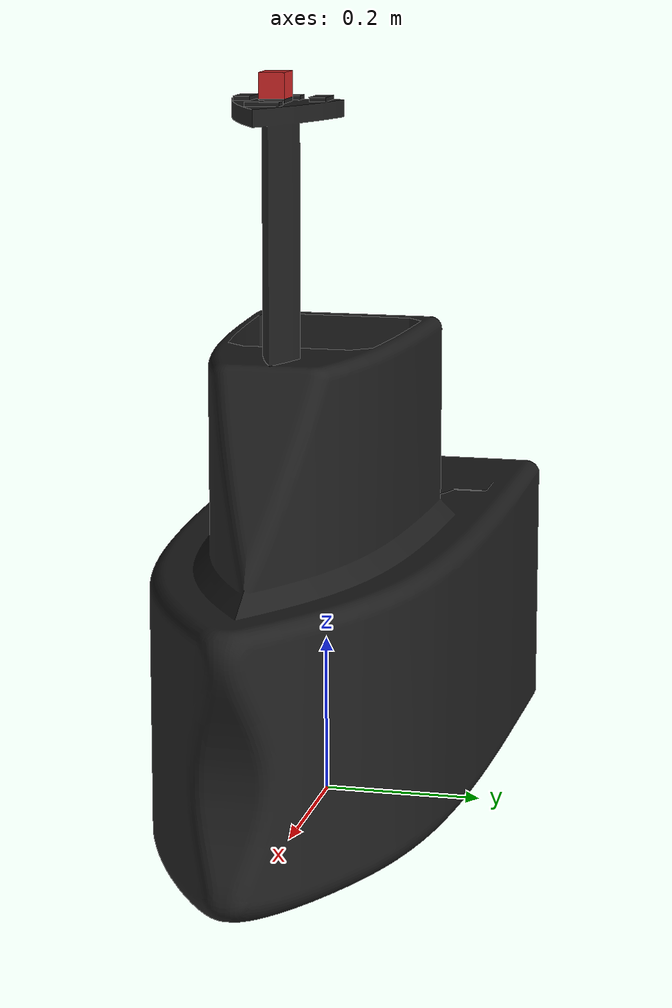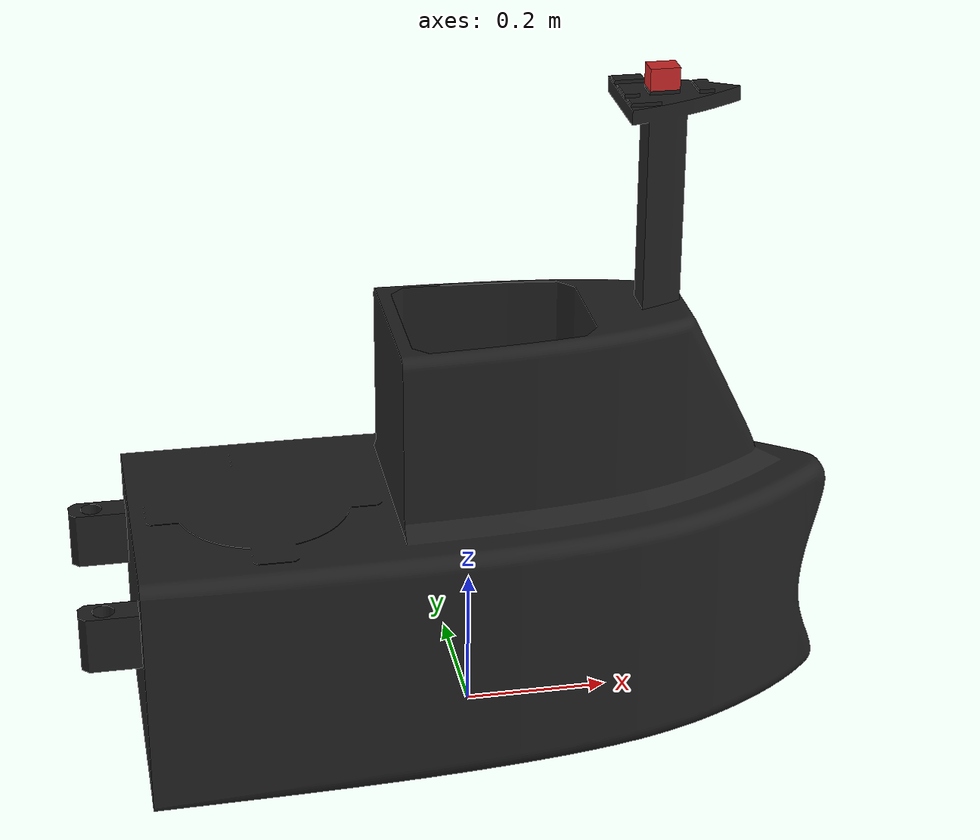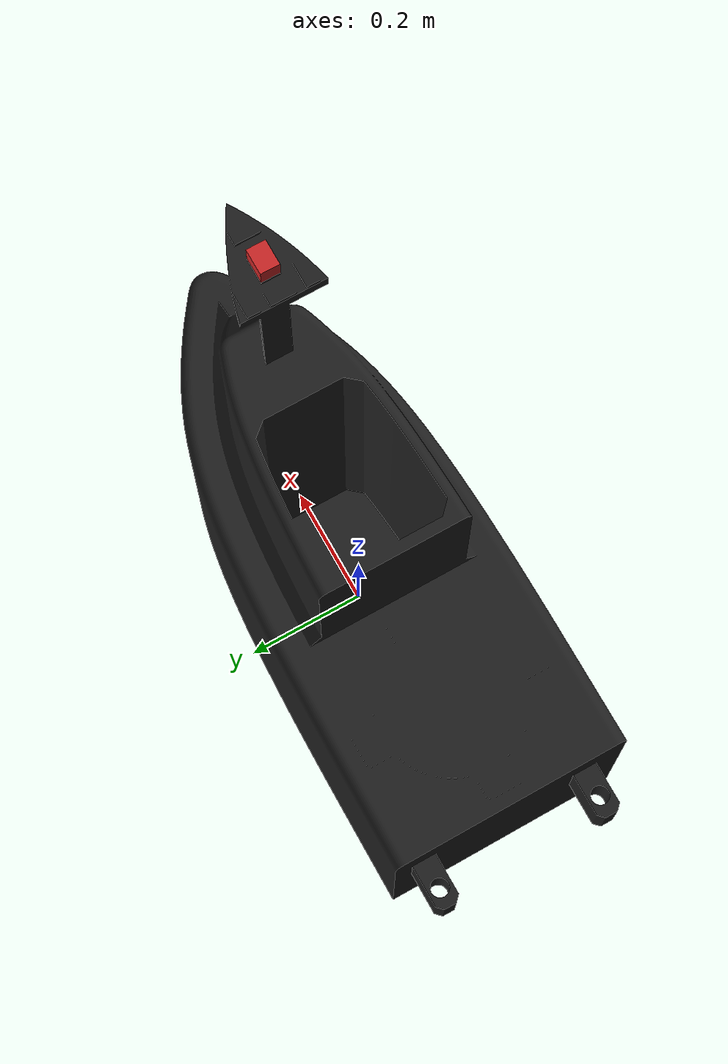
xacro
<?xml version="1.0" ?>
<robot name="ros_robot" xmlns:xacro="http://www.ros.org/wiki/xacro" >

<xacro:include filename="$(find ros_robot_description)/urdf/Sensors/imu_sensor.xacro"/>
<xacro:include filename="$(find ros_robot_description)/urdf/Sensors/GpsSensor.xacro" />

<link name="base_link">
  <inertial>
    <origin xyz="-0.03405684570032273 0.00013676637886197947 0.20520744004115304" rpy="0 0 0"/>
    <mass value="869.3591197326726"/>
    <inertia ixx="27.740951" iyy="79.996007" izz="72.451196" ixy="0.012915" iyz="-0.000998" ixz="-5.997035"/>
  </inertial>
  <visual>
    <origin xyz="0 0 0" rpy="0 0 0"/>
    <geometry>
      <mesh filename="package://ros_robot_description/meshes/base_link.stl" scale="0.001 0.001 0.001"/>
    </geometry>
    <material name="paint_enamel_glossy_black"/>
  </visual>
  <collision>
    <origin xyz="-0.034008 -0.000106 -0.045" rpy="0 0 0"/>
    <geometry>
      <mesh filename="package://ros_robot_description/meshes/GarbageBot_1.stl" scale="0.001 0.001 0.001"/>
    </geometry>
  </collision>
</link>

<link name="world_boat_link"/>

<joint name="world_boat_joint" type="fixed">
  <origin xyz="0 0 0" rpy="0 0 0"/>
  <parent link="world_boat_link"/>
  <child link="base_link"/>
</joint>

</robot>

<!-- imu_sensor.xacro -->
<robot name="ros_robot" xmlns:xacro="http://www.ros.org/wiki/xacro" >

  <link name="imu_link">
    <visual name="imu_wamv_visual">
      &gt;
      <geometry>
        <box size="0.05 0.025 0.005"/>
      </geometry>
      <material name="visual_material">
        <color rgba="1.0 0.0 00 1.0"/>
      </material>
    </visual>
    <inertial>
      <mass value="0.1"/>
      <inertia ixx="0.000083" ixy="0.0" ixz="0.0" iyy="0.000083" iyz="0.0" izz="0.0125"/>
    </inertial>
  </link>

  <joint name="imu_joint" type="fixed">
    <origin rpy="0 0 0" xyz="0 0 0"/>
    <parent link="base_link"/>
    <child link="imu_link"/>
  </joint>

  <joint name="magnometer_joint" type="fixed">
    <origin xyz="0 0 0" rpy="0 0 0"/>
    <parent link="imu_link"/>
    <child link="magnometer_link"/>
  </joint>
  <link name="magnometer_link"> </link>

  <gazebo>
    <plugin filename="libhector_gazebo_ros_imu.so" name="imu_plugin">
      <updateRate>100</updateRate>
      <bodyName>imu_link</bodyName>
      <topicName>sensors/imu/data</topicName>
      <serviceName>sensors/imu_service</serviceName>
      <!-- Manually prepend namespace to tf frame. -->
      <frameId>imu_link</frameId>
      <alwaysOn>true</alwaysOn>
      <accelOffset>0.0 0.0 0.0</accelOffset>
      <accelDrift>0.0 0.0 0.0</accelDrift>
      <accelDriftFrequency>0.00027 0.00027 0.000027</accelDriftFrequency>
      <accelGaussianNoise>0.0 0.0 0.0</accelGaussianNoise>
      <rateOffset>0.0 0.0 0.0</rateOffset>
      <rateDrift>0.0 0.0 0.0</rateDrift>
      <rateDriftFrequency>0.00027 0.00027 0.000027</rateDriftFrequency>
      <rateGaussianNoise>0.0 0.0 0.0</rateGaussianNoise>
      <yawOffset>0.0</yawOffset>
      <yawDrift>0.0</yawDrift>
      <yawDriftFrequency>0.00027</yawDriftFrequency>
      <yawGaussianNoise>0.0</yawGaussianNoise>
    </plugin>
  </gazebo>

  <gazebo>
    <plugin filename="libhector_gazebo_ros_magnetic.so" name="magnetometer">
      <updateRate>100.0</updateRate>
      <bodyname>magnometer_link</bodyname>
      <topicName>sensors/magnometer</topicName>
      <referenceHeading>0</referenceHeading>
      <magnitude>5.7065E-5</magnitude>
      <declination>0</declination>
      <inclination>0</inclination>
      <offset>0 0 0</offset>
      <driftFrequency>0 0 0</driftFrequency>
      <gaussianNoise>0 0 0</gaussianNoise>
    </plugin>
  </gazebo>
</robot>

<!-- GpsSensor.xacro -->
<robot name="ros_robot" xmlns:xacro="http://www.ros.org/wiki/xacro" >

<link name="GPS_1">
  <inertial>
    <origin xyz="3.8540129310149496e-07 1.6197341740718644e-07 0.015000000000000013" rpy="0 0 0"/>
    <mass value="0.003"/>
    <inertia ixx="4.2e-05" iyy="5.9e-05" izz="5.9e-05" ixy="0.0" iyz="-0.0" ixz="-0.0"/>
  </inertial>
  <visual>
    <origin xyz="-0.254007 -0.000103 -0.91" rpy="0 0 0"/>
    <geometry>
      <mesh filename="package://ros_robot_description/meshes/GPS_1.stl" scale="0.001 0.001 0.001"/>
    </geometry>
    <material name="paint_enamel_glossy_red_1"/>
  </visual>
  <collision>
    <origin xyz="-0.254007 -0.000103 -0.91" rpy="0 0 0"/>
    <geometry>
      <mesh filename="package://ros_robot_description/meshes/GPS_1.stl" scale="0.001 0.001 0.001"/>
    </geometry>
  </collision>
</link>

<joint name="gpsmount" type="fixed">
  <origin xyz="0.254007 0.000103 0.91" rpy="0 0 0"/>
  <parent link="base_link"/>
  <child link="GPS_1"/>
</joint>

<joint name="Gps_joint" type="fixed">
  <origin xyz="0 0 0" rpy="0 0 0"/>
  <parent link="GPS_1"/>
  <child link="GPS_link"/>
</joint>

<link name="GPS_link"> </link>
  <gazebo>
    <plugin filename="libhector_gazebo_ros_gps.so" name="gps_plugin_gps">
      <updateRate>100</updateRate>
      <alwaysOn>true</alwaysOn>
      <bodyName>GPS_1</bodyName>
      <!-- Manually prepend namespace to tf frame. -->
      <frameId>GPS_1</frameId>
      <topicName>sensors/gps/fix</topicName>
      <velocityTopicName>sensors/gps/fix_velocity</velocityTopicName>
      <useWorldSphericalCoordinates>true</useWorldSphericalCoordinates>
      <offset>0.0 0.0 0.0</offset>
      <drift>0.0 0.0 0.0</drift>
      <gaussianNoise>0 0 0</gaussianNoise>
      <velocityOffset>0.0 0.0 0.0</velocityOffset>
      <velocityDrift>0.0 0.0 0.0</velocityDrift>
      <velocityGaussianNoise>0.0 0.0 0.0</velocityGaussianNoise>
    </plugin>
  </gazebo>
<gazebo reference="GPS_1">
  <material>Gazebo/Green</material>
  <mu1>0.2</mu1>
  <mu2>0.2</mu2>
  <selfCollide>true</selfCollide>
</gazebo>

</robot>
